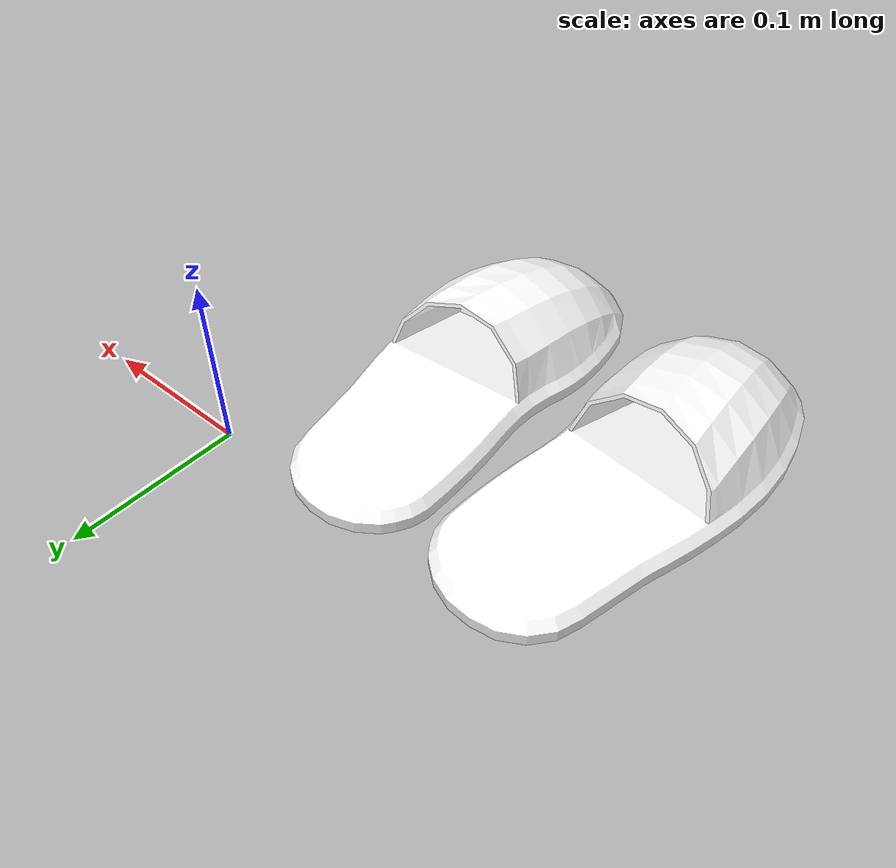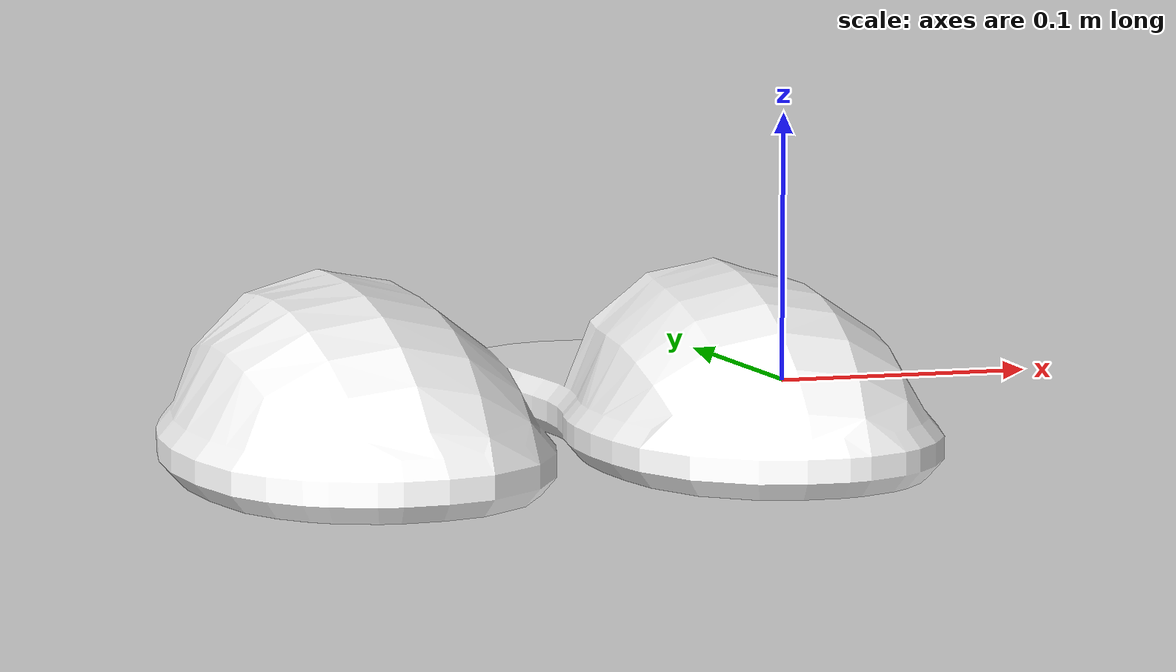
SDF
<?xml version='1.0'?>
<sdf version='1.7'>
  <model name='slippers'>
    <link name='link'>
      <pose>0 0 0 0 0 3.14</pose>
      <visual name='visual'>
        <geometry>
          <mesh>
            <uri>/root/workspace/self_gazebo_models/slippers/meshes/model.dae</uri>
          </mesh>
        </geometry>
        <material>
          <script>
	          <uri>/root/workspace/self_gazebo_models/slippers/materials/scripts</uri>
            <uri>/root/workspace/self_gazebo_models/slippers/materials/textures</uri>
            <name>Livingroom/slippers</name>
          </script>
          <ambient>1 1 1 1</ambient>
        </material>
      </visual>
      <collision name='collision'>
        <geometry>
          <mesh>
            <uri>/root/workspace/self_gazebo_models/slippers/meshes/model.dae</uri>
            <scale>1 1 1</scale>
          </mesh>
        </geometry>
      </collision>
    </link>
    <static>1</static>
    <allow_auto_disable>1</allow_auto_disable>
  </model>
</sdf>
